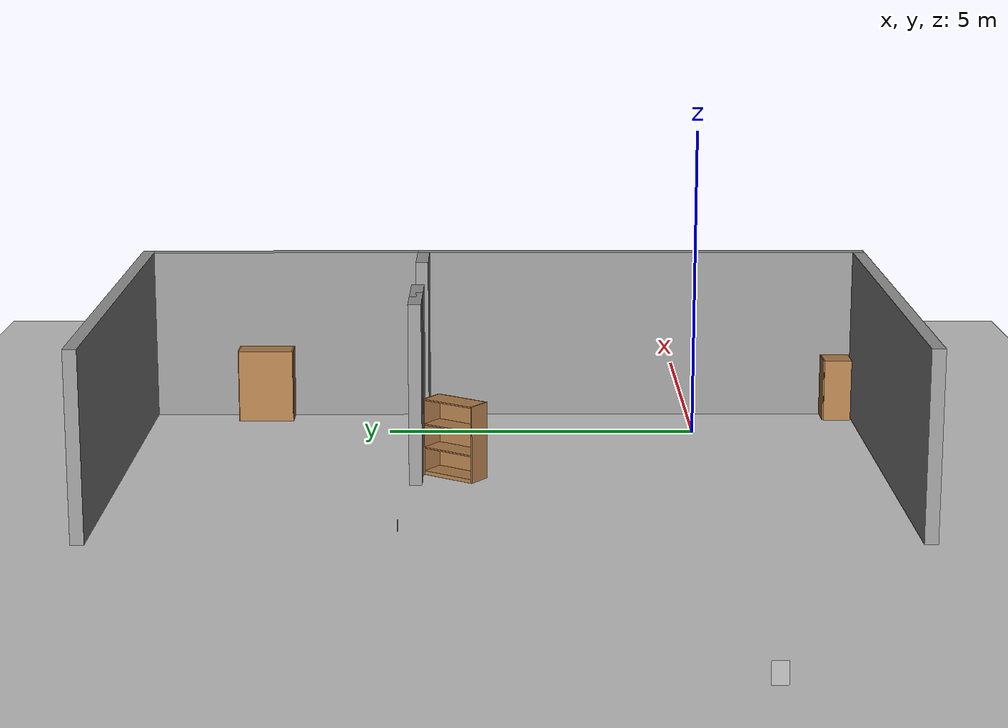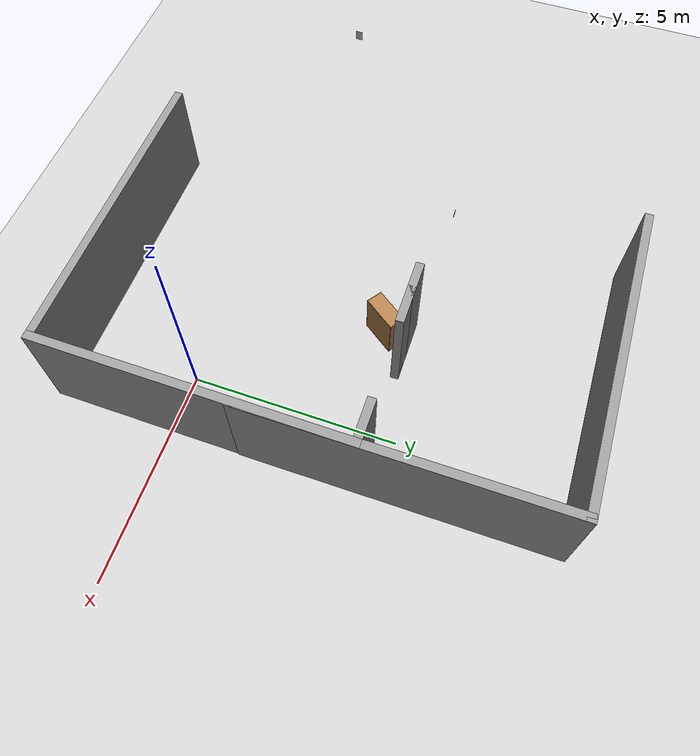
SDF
<sdf version="1.4">
 <world name="default">
  <model name="character">
   <static>1</static>
   <link name="cluedo_character::link">
    <collision name="collision">
     <geometry><plane><normal>0 0 1</normal><size>0.21 0.297</size></plane></geometry>
     <surface><friction><ode><mu>100</mu><mu2>50</mu2></ode></friction></surface>
    </collision>
    <visual name="visual">
     <pose>-12.18 0 0.4 1.57 5.55112e-17 1.57</pose>
     <cast_shadows>0</cast_shadows>
     <geometry><plane><normal>0 0 1</normal><size>0.21 0.297</size></plane></geometry>
     <material>
      <script>
       <uri>model://cluedo_character/materials/scripts</uri>
       <uri>model://cluedo_character/materials/textures</uri>
       <name>Cluedo_character/Image</name>
      </script>
     </material>
    </visual>
    <velocity_decay><linear>0</linear><angular>0</angular></velocity_decay>
   </link>
  </model>
  <model name="ground_plane">
   <static>1</static>
   <link name="link">
    <collision name="collision">
     <geometry><plane><normal>0 0 1</normal><size>100 100</size></plane></geometry>
     <surface><friction><ode><mu>100</mu><mu2>50</mu2></ode></friction></surface>
    </collision>
    <visual name="visual">
     <cast_shadows>0</cast_shadows>
     <geometry><plane><normal>0 0 1</normal><size>100 100</size></plane></geometry>
     <material>
      <script><uri>file://media/materials/scripts/gazebo.material</uri><name>Gazebo/Grey</name></script>
     </material>
    </visual>
    <velocity_decay><linear>0</linear><angular>0</angular></velocity_decay>
   </link>
  </model>
  <model name="grey_wall_3">
   <static>1</static>
   <link name="link">
    <pose>0 0 1.4 0 -0 0</pose>
    <collision name="collision"><geometry><box><size>7.5 0.2 2.8</size></box></geometry></collision>
    <visual name="visual">
     <cast_shadows>0</cast_shadows>
     <geometry><box><size>7.5 0.2 2.8</size></box></geometry>
     <material>
      <script>
       <uri>model://grey_wall/materials/scripts</uri>
       <uri>model://grey_wall/materials/textures</uri>
       <name>vrc/grey_wall</name>
      </script>
     </material>
    </visual>
    <velocity_decay><linear>0</linear><angular>0</angular></velocity_decay>
   </link>
   <pose>1.28759 0.815408 0.00212 0 0 -1.57102</pose>
  </model>
  <model name="grey_wall_4">
   <static>1</static>
   <link name="link">
    <pose>0 0 1.4 0 -0 0</pose>
    <collision name="collision"><geometry><box><size>7.5 0.2 2.8</size></box></geometry></collision>
    <visual name="visual">
     <cast_shadows>0</cast_shadows>
     <geometry><box><size>7.5 0.2 2.8</size></box></geometry>
     <material>
      <script>
       <uri>model://grey_wall/materials/scripts</uri>
       <uri>model://grey_wall/materials/textures</uri>
       <name>vrc/grey_wall</name>
      </script>
     </material>
    </visual>
    <velocity_decay><linear>0</linear><angular>0</angular></velocity_decay>
   </link>
   <pose>-2.37715 -2.83764 0 0 -0 0</pose>
  </model>
  <model name="grey_wall_5">
   <static>1</static>
   <link name="link">
    <pose>0 0 1.4 0 -0 0</pose>
    <collision name="collision"><geometry><box><size>7.5 0.2 2.8</size></box></geometry></collision>
    <visual name="visual">
     <cast_shadows>0</cast_shadows>
     <geometry><box><size>7.5 0.2 2.8</size></box></geometry>
     <material>
      <script>
       <uri>model://grey_wall/materials/scripts</uri>
       <uri>model://grey_wall/materials/textures</uri>
       <name>vrc/grey_wall</name>
      </script>
     </material>
    </visual>
    <velocity_decay><linear>0</linear><angular>0</angular></velocity_decay>
   </link>
   <pose>-2.39332 9.09609 0 0 -0 0</pose>
  </model>
  <model name="cabinet">
   <static>1</static>
   <link name="cabinet_bottom_plate">
    <inertial>
     <pose>0 0 -1 0 -0 0</pose>
     <inertia><ixx>2.05</ixx><ixy>0</ixy><ixz>0</ixz><iyy>2.05</iyy><iyz>0</iyz><izz>2.05</izz></inertia>
     <mass>25</mass>
    </inertial>
    <collision name="cabinet_bottom_plate_geom">
     <pose>0 0 0.01 0 -0 0</pose>
     <geometry><box><size>0.45 0.45 0.02</size></box></geometry>
    </collision>
    <visual name="cabinet_bottom_plate_geom_visual">
     <pose>0 0 0.01 0 -0 0</pose>
     <geometry><box><size>0.45 0.45 0.02</size></box></geometry>
     <material>
      <script><uri>file://media/materials/scripts/gazebo.material</uri><name>Gazebo/Wood</name></script>
     </material>
    </visual>
    <collision name="cabinet_bottom_plate_geom_cabinet_back_plate">
     <pose>0.235 0 0.51 0 -0 0</pose>
     <geometry><box><size>0.02 0.45 1.02</size></box></geometry>
    </collision>
    <visual name="cabinet_bottom_plate_geom_cabinet_back_plate_visual">
     <pose>0.235 0 0.51 0 -0 0</pose>
     <geometry><box><size>0.02 0.45 1.02</size></box></geometry>
     <material>
      <script><uri>file://media/materials/scripts/gazebo.material</uri><name>Gazebo/Wood</name></script>
     </material>
    </visual>
    <collision name="cabinet_bottom_plate_geom_cabinet_left_plate">
     <pose>0 0.235 0.51 0 -0 0</pose>
     <geometry><box><size>0.45 0.02 1.02</size></box></geometry>
    </collision>
    <visual name="cabinet_bottom_plate_geom_cabinet_left_plate_visual">
     <pose>0 0.235 0.51 0 -0 0</pose>
     <geometry><box><size>0.45 0.02 1.02</size></box></geometry>
     <material>
      <script><uri>file://media/materials/scripts/gazebo.material</uri><name>Gazebo/Wood</name></script>
     </material>
    </visual>
    <collision name="cabinet_bottom_plate_geom_cabinet_middle_plate">
     <pose>0 0 0.51 0 -0 0</pose>
     <geometry><box><size>0.45 0.45 0.02</size></box></geometry>
    </collision>
    <visual name="cabinet_bottom_plate_geom_cabinet_middle_plate_visual">
     <pose>0 0 0.51 0 -0 0</pose>
     <geometry><box><size>0.45 0.45 0.02</size></box></geometry>
     <material>
      <script><uri>file://media/materials/scripts/gazebo.material</uri><name>Gazebo/Wood</name></script>
     </material>
    </visual>
    <collision name="cabinet_bottom_plate_geom_cabinet_right_plate">
     <pose>0 -0.235 0.51 0 -0 0</pose>
     <geometry><box><size>0.45 0.02 1.02</size></box></geometry>
    </collision>
    <visual name="cabinet_bottom_plate_geom_cabinet_right_plate_visual">
     <pose>0 -0.235 0.51 0 -0 0</pose>
     <geometry><box><size>0.45 0.02 1.02</size></box></geometry>
     <material>
      <script><uri>file://media/materials/scripts/gazebo.material</uri><name>Gazebo/Wood</name></script>
     </material>
    </visual>
    <collision name="cabinet_bottom_plate_geom_cabinet_top_plate">
     <pose>0 0 1.01 0 -0 0</pose>
     <geometry><box><size>0.45 0.45 0.02</size></box></geometry>
    </collision>
    <visual name="cabinet_bottom_plate_geom_cabinet_top_plate_visual">
     <pose>0 0 1.01 0 -0 0</pose>
     <geometry><box><size>0.45 0.45 0.02</size></box></geometry>
     <material>
      <script><uri>file://media/materials/scripts/gazebo.material</uri><name>Gazebo/Wood</name></script>
     </material>
    </visual>
    <velocity_decay><linear>0</linear><angular>0</angular></velocity_decay>
   </link>
   <pose>0.912804 -2.47692 0.028898 0 -0 1.56926</pose>
  </model>
  <model name="bookshelf">
   <static>1</static>
   <link name="link">
    <inertial><mass>1</mass></inertial>
    <collision name="back">
     <pose>0 0.005 0.6 0 -0 0</pose>
     <geometry><box><size>0.9 0.01 1.2</size></box></geometry>
    </collision>
    <visual name="visual1">
     <pose>0 0.005 0.6 0 -0 0</pose>
     <geometry><box><size>0.9 0.01 1.2</size></box></geometry>
     <material>
      <script><uri>file://media/materials/scripts/gazebo.material</uri><name>Gazebo/Wood</name></script>
     </material>
    </visual>
    <collision name="left_side">
     <pose>0.45 -0.195 0.6 0 -0 0</pose>
     <geometry><box><size>0.02 0.4 1.2</size></box></geometry>
    </collision>
    <visual name="visual2">
     <pose>0.45 -0.195 0.6 0 -0 0</pose>
     <geometry><box><size>0.02 0.4 1.2</size></box></geometry>
     <material>
      <script><uri>file://media/materials/scripts/gazebo.material</uri><name>Gazebo/Wood</name></script>
     </material>
    </visual>
    <collision name="right_side">
     <pose>-0.45 -0.195 0.6 0 -0 0</pose>
     <geometry><box><size>0.02 0.4 1.2</size></box></geometry>
    </collision>
    <visual name="visual3">
     <pose>-0.45 -0.195 0.6 0 -0 0</pose>
     <geometry><box><size>0.02 0.4 1.2</size></box></geometry>
     <material>
      <script><uri>file://media/materials/scripts/gazebo.material</uri><name>Gazebo/Wood</name></script>
     </material>
    </visual>
    <collision name="bottom">
     <pose>0 -0.195 0.03 0 -0 0</pose>
     <geometry><box><size>0.88 0.4 0.06</size></box></geometry>
    </collision>
    <visual name="visual4">
     <pose>0 -0.195 0.03 0 -0 0</pose>
     <geometry><box><size>0.88 0.4 0.06</size></box></geometry>
     <material>
      <script><uri>file://media/materials/scripts/gazebo.material</uri><name>Gazebo/Wood</name></script>
     </material>
    </visual>
    <collision name="top">
     <pose>0 -0.195 1.19 0 -0 0</pose>
     <geometry><box><size>0.88 0.4 0.02</size></box></geometry>
    </collision>
    <visual name="visual5">
     <pose>0 -0.195 1.19 0 -0 0</pose>
     <geometry><box><size>0.88 0.4 0.02</size></box></geometry>
     <material>
      <script><uri>file://media/materials/scripts/gazebo.material</uri><name>Gazebo/Wood</name></script>
     </material>
    </visual>
    <collision name="low_shelf">
     <pose>0 -0.195 0.43 0 -0 0</pose>
     <geometry><box><size>0.88 0.4 0.02</size></box></geometry>
    </collision>
    <visual name="visual6">
     <pose>0 -0.195 0.43 0 -0 0</pose>
     <geometry><box><size>0.88 0.4 0.02</size></box></geometry>
     <material>
      <script><uri>file://media/materials/scripts/gazebo.material</uri><name>Gazebo/Wood</name></script>
     </material>
    </visual>
    <collision name="high_shelf">
     <pose>0 -0.195 0.8 0 -0 0</pose>
     <geometry><box><size>0.88 0.4 0.02</size></box></geometry>
    </collision>
    <visual name="visual7">
     <pose>0 -0.195 0.8 0 -0 0</pose>
     <geometry><box><size>0.88 0.4 0.02</size></box></geometry>
     <material>
      <script><uri>file://media/materials/scripts/gazebo.material</uri><name>Gazebo/Wood</name></script>
     </material>
    </visual>
    <velocity_decay><linear>0</linear><angular>0</angular></velocity_decay>
   </link>
   <pose>-2.47728 3.76602 0 0 0 -2.18701</pose>
  </model>
  <model name="grey_wall">
   <static>1</static>
   <link name="link">
    <pose>0 0 1.4 0 -0 0</pose>
    <collision name="collision"><geometry><box><size>7.5 0.2 2.8</size></box></geometry></collision>
    <visual name="visual">
     <cast_shadows>0</cast_shadows>
     <geometry><box><size>7.5 0.2 2.8</size></box></geometry>
     <material>
      <script>
       <uri>model://grey_wall/materials/scripts</uri>
       <uri>model://grey_wall/materials/textures</uri>
       <name>vrc/grey_wall</name>
      </script>
     </material>
    </visual>
    <velocity_decay><linear>0</linear><angular>0</angular></velocity_decay>
   </link>
   <pose>1.28254 5.43803 0 0 0 -1.56399</pose>
  </model>
  <model name="grey_wall_small">
   <static>1</static>
   <link name="link">
    <pose>0 0 1.4 0 -0 0</pose>
    <collision name="collision"><geometry><box><size>0.9375 0.2 2.8</size></box></geometry></collision>
    <visual name="visual">
     <cast_shadows>0</cast_shadows>
     <geometry><box><size>0.9375 0.2 2.8</size></box></geometry>
     <material>
      <script>
       <uri>model://grey_wall_small/materials/scripts</uri>
       <uri>model://grey_wall_small/materials/textures</uri>
       <name>vrc/grey_wall_small</name>
      </script>
     </material>
    </visual>
    <velocity_decay><linear>0</linear><angular>0</angular></velocity_decay>
   </link>
   <pose>-2.66651 4.47404 0 0 -0 0</pose>
  </model>
  <model name="grey_wall_small_1">
   <static>1</static>
   <link name="link">
    <pose>0 0 1.4 0 -0 0</pose>
    <collision name="collision"><geometry><box><size>0.9375 0.2 2.8</size></box></geometry></collision>
    <visual name="visual">
     <cast_shadows>0</cast_shadows>
     <geometry><box><size>0.9375 0.2 2.8</size></box></geometry>
     <material>
      <script>
       <uri>model://grey_wall_small/materials/scripts</uri>
       <uri>model://grey_wall_small/materials/textures</uri>
       <name>vrc/grey_wall_small</name>
      </script>
     </material>
    </visual>
    <velocity_decay><linear>0</linear><angular>0</angular></velocity_decay>
   </link>
   <pose>-2.03511 4.47305 0 0 -0 0</pose>
  </model>
  <model name="grey_wall_small_2">
   <static>1</static>
   <link name="link">
    <pose>0 0 1.4 0 -0 0</pose>
    <collision name="collision"><geometry><box><size>0.9375 0.2 2.8</size></box></geometry></collision>
    <visual name="visual">
     <cast_shadows>0</cast_shadows>
     <geometry><box><size>0.9375 0.2 2.8</size></box></geometry>
     <material>
      <script>
       <uri>model://grey_wall_small/materials/scripts</uri>
       <uri>model://grey_wall_small/materials/textures</uri>
       <name>vrc/grey_wall_small</name>
      </script>
     </material>
    </visual>
    <velocity_decay><linear>0</linear><angular>0</angular></velocity_decay>
   </link>
   <pose>0.747906 4.47091 0 0 -0 0</pose>
  </model>
  <model name="red_image">
   <static>1</static>
   <link name="link">
    <collision name="collision">
     <geometry><plane><normal>0 0 1</normal><size>0.21 0.16</size></plane></geometry>
     <surface><friction><ode><mu>100</mu><mu2>50</mu2></ode></friction></surface>
    </collision>
    <visual name="visual">
     <pose>-1.7 4.6 0.4 1.57 4.33681e-19 3.14</pose>
     <cast_shadows>0</cast_shadows>
     <geometry><plane><normal>0 0 1</normal><size>0.21 0.16</size></plane></geometry>
     <material>
      <script>
       <uri>model://red_image/materials/scripts</uri>
       <uri>model://red_image/materials/textures</uri>
       <name>red_image/Image</name>
      </script>
     </material>
    </visual>
    <velocity_decay><linear>0</linear><angular>0</angular></velocity_decay>
   </link>
  </model>
  <model name="green_image">
   <static>1</static>
   <link name="link">
    <collision name="collision">
     <geometry><plane><normal>0 0 1</normal><size>0.21 0.16</size></plane></geometry>
     <surface><friction><ode><mu>100</mu><mu2>50</mu2></ode></friction></surface>
    </collision>
    <visual name="visual">
     <pose>-6.48 4.6 0.4 1.57 4.33681e-19 3.14</pose>
     <cast_shadows>0</cast_shadows>
     <geometry><plane><normal>0 0 1</normal><size>0.21 0.16</size></plane></geometry>
     <material>
      <script>
       <uri>model://green_image/materials/scripts</uri>
       <uri>model://green_image/materials/textures</uri>
       <name>green_image/Image</name>
      </script>
     </material>
    </visual>
    <velocity_decay><linear>0</linear><angular>0</angular></velocity_decay>
   </link>
  </model>
  <model name="bookshelf_1">
   <static>1</static>
   <link name="link">
    <inertial><mass>1</mass></inertial>
    <collision name="back">
     <pose>0 0.005 0.6 0 -0 0</pose>
     <geometry><box><size>0.9 0.01 1.2</size></box></geometry>
    </collision>
    <visual name="visual1">
     <pose>0 0.005 0.6 0 -0 0</pose>
     <geometry><box><size>0.9 0.01 1.2</size></box></geometry>
     <material>
      <script><uri>file://media/materials/scripts/gazebo.material</uri><name>Gazebo/Wood</name></script>
     </material>
    </visual>
    <collision name="left_side">
     <pose>0.45 -0.195 0.6 0 -0 0</pose>
     <geometry><box><size>0.02 0.4 1.2</size></box></geometry>
    </collision>
    <visual name="visual2">
     <pose>0.45 -0.195 0.6 0 -0 0</pose>
     <geometry><box><size>0.02 0.4 1.2</size></box></geometry>
     <material>
      <script><uri>file://media/materials/scripts/gazebo.material</uri><name>Gazebo/Wood</name></script>
     </material>
    </visual>
    <collision name="right_side">
     <pose>-0.45 -0.195 0.6 0 -0 0</pose>
     <geometry><box><size>0.02 0.4 1.2</size></box></geometry>
    </collision>
    <visual name="visual3">
     <pose>-0.45 -0.195 0.6 0 -0 0</pose>
     <geometry><box><size>0.02 0.4 1.2</size></box></geometry>
     <material>
      <script><uri>file://media/materials/scripts/gazebo.material</uri><name>Gazebo/Wood</name></script>
     </material>
    </visual>
    <collision name="bottom">
     <pose>0 -0.195 0.03 0 -0 0</pose>
     <geometry><box><size>0.88 0.4 0.06</size></box></geometry>
    </collision>
    <visual name="visual4">
     <pose>0 -0.195 0.03 0 -0 0</pose>
     <geometry><box><size>0.88 0.4 0.06</size></box></geometry>
     <material>
      <script><uri>file://media/materials/scripts/gazebo.material</uri><name>Gazebo/Wood</name></script>
     </material>
    </visual>
    <collision name="top">
     <pose>0 -0.195 1.19 0 -0 0</pose>
     <geometry><box><size>0.88 0.4 0.02</size></box></geometry>
    </collision>
    <visual name="visual5">
     <pose>0 -0.195 1.19 0 -0 0</pose>
     <geometry><box><size>0.88 0.4 0.02</size></box></geometry>
     <material>
      <script><uri>file://media/materials/scripts/gazebo.material</uri><name>Gazebo/Wood</name></script>
     </material>
    </visual>
    <collision name="low_shelf">
     <pose>0 -0.195 0.43 0 -0 0</pose>
     <geometry><box><size>0.88 0.4 0.02</size></box></geometry>
    </collision>
    <visual name="visual6">
     <pose>0 -0.195 0.43 0 -0 0</pose>
     <geometry><box><size>0.88 0.4 0.02</size></box></geometry>
     <material>
      <script><uri>file://media/materials/scripts/gazebo.material</uri><name>Gazebo/Wood</name></script>
     </material>
    </visual>
    <collision name="high_shelf">
     <pose>0 -0.195 0.8 0 -0 0</pose>
     <geometry><box><size>0.88 0.4 0.02</size></box></geometry>
    </collision>
    <visual name="visual7">
     <pose>0 -0.195 0.8 0 -0 0</pose>
     <geometry><box><size>0.88 0.4 0.02</size></box></geometry>
     <material>
      <script><uri>file://media/materials/scripts/gazebo.material</uri><name>Gazebo/Wood</name></script>
     </material>
    </visual>
    <velocity_decay><linear>0</linear><angular>0</angular></velocity_decay>
   </link>
   <pose>0.745914 7.12361 0 0 -0 1.56891</pose>
  </model>
 </world>
</sdf>
